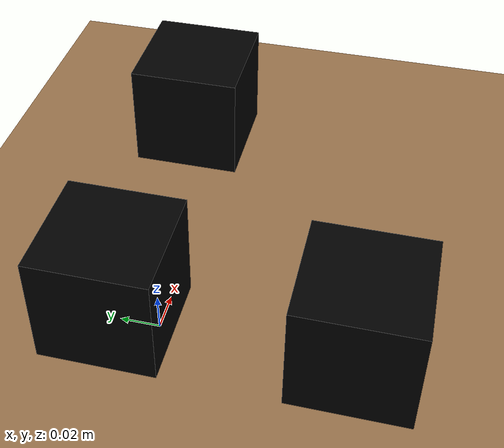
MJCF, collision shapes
<mujoco model="stack_color_blocks">
  <compiler meshdir="../../../meshes"/>

  <visual>
    <map znear="0.001"/>
  </visual>

  <asset>
    <!-- meshdir resolved to assets/meshes/ via robotiq.xml compiler -->
    <mesh name="cube_blue_mesh"   file="stack_color_blocks/blue_plastic_cube/blue_plastic_cube.obj"/>
    <mesh name="cube_yellow_mesh" file="stack_color_blocks/yellow_plastic_cube/yellow_plastic_cube.obj"/>
    <mesh name="cube_orange_mesh" file="stack_color_blocks/orange_plastic_cube/orange_plastic_cube.obj"/>

    <material name="cube_blue_mat"   rgba="0.10 0.35 0.95 1" reflectance="0.2"/>
    <material name="cube_yellow_mat" rgba="0.95 0.85 0.10 1" reflectance="0.2"/>
    <material name="cube_orange_mat" rgba="0.95 0.55 0.10 1" reflectance="0.2"/>
  </asset>

  <worldbody>
    <light name="demo_light" pos="0 0 1.5" dir="0 0 -1"/>
    <geom name="floor" type="plane" size="2 2 0.1" rgba="0.85 0.85 0.85 1"/>

    <!-- table: center z=0.03, top surface z=0.06 -->
    <body name="table" pos="0 0 0.03">
      <geom name="table_top" type="box" size="0.28 0.22 0.03" rgba="0.6 0.45 0.3 1"/>
    </body>

    <!-- Cube half-extent = 0.025 (5 cm cube)
         center z = 0.06 (table top) + 0.025 = 0.085                         -->

    <!-- cube_blue: source, picked first and placed on cube_orange -->
    <body name="cube_blue" pos="-0.05 0.0 0.085">
      <freejoint name="cube_blue_joint"/>
      <geom name="cube_blue_col" type="box" size="0.025 0.025 0.025"
            mass="0.005" friction="1.2 0.05 0.01"
            rgba="0 0 0 0" contype="1" conaffinity="1"/>
      <geom name="cube_blue_vis" type="mesh" mesh="cube_blue_mesh" material="cube_blue_mat"
            density="0" contype="0" conaffinity="0" group="1"/>
      <site name="cube_blue_site" pos="0 0 0" size="0.004" rgba="1 0 0 0"/>
    </body>

    <!-- cube_orange: base of the stack (stacking destination for blue) -->
    <body name="cube_orange" pos="0.08 0.0 0.085">
      <freejoint name="cube_orange_joint"/>
      <geom name="cube_orange_col" type="box" size="0.025 0.025 0.025"
            mass="0.005" friction="1.2 0.05 0.01"
            rgba="0 0 0 0" contype="1" conaffinity="1"/>
      <geom name="cube_orange_vis" type="mesh" mesh="cube_orange_mesh" material="cube_orange_mat"
            density="0" contype="0" conaffinity="0" group="1"/>
      <site name="cube_orange_site" pos="0 0 0" size="0.004" rgba="1 0 0 0"/>
    </body>

    <!-- cube_yellow: picked second and placed on top of cube_blue -->
    <body name="cube_yellow" pos="-0.05 -0.1 0.085">
      <freejoint name="cube_yellow_joint"/>
      <geom name="cube_yellow_col" type="box" size="0.025 0.025 0.025"
            mass="0.005" friction="1.2 0.05 0.01"
            rgba="0 0 0 0" contype="1" conaffinity="1"/>
      <geom name="cube_yellow_vis" type="mesh" mesh="cube_yellow_mesh" material="cube_yellow_mat"
            density="0" contype="0" conaffinity="0" group="1"/>
      <site name="cube_yellow_site" pos="0 0 0" size="0.004" rgba="1 0 0 0"/>
    </body>

    <!-- Front camera -->
    <camera name="env1_cam" pos="0 -0.8 0.5" xyaxes="1 0 0 0 0.447 0.894" fovy="45"/>
    <!-- Side camera -->
    <camera name="env0_cam" pos="0.9 0 0.5" xyaxes="0 1 0 -0.406 0 0.914" fovy="45"/>
  </worldbody>

</mujoco>
